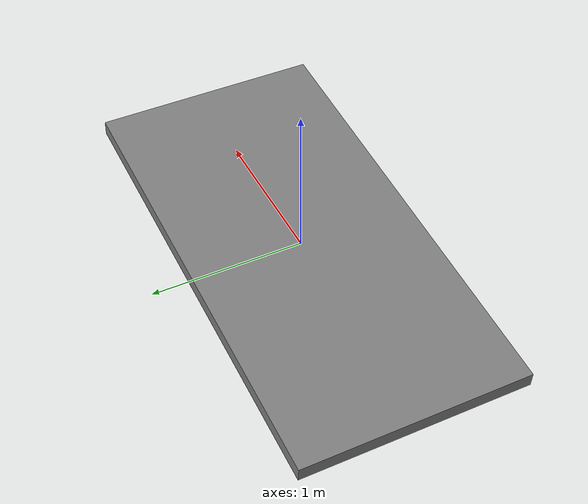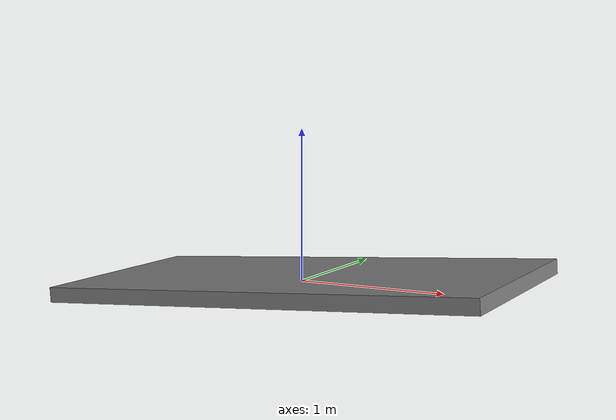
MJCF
<mujoco model="go2 scene">

  <statistic center="0 0 0.1" extent="0.8" />

  <visual>
    <headlight diffuse="0.6 0.6 0.6" ambient="0.3 0.3 0.3" specular="0 0 0" />
    <rgba haze="0.15 0.25 0.35 1" />
    <global azimuth="-130" elevation="-20" />
  </visual>

  <asset>
    <texture type="skybox" builtin="gradient" rgb1="0.3 0.5 0.7" rgb2="0 0 0" width="512" height="3072" />
  </asset>

  <worldbody>
  <geom pos="0 0 0" type="box" size="1.5 0.75 0.05" quat="0.9993910568120054 0.0 -0.03489291567328614 0.0" /></worldbody>
</mujoco>
